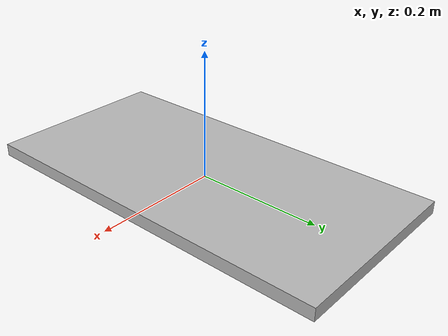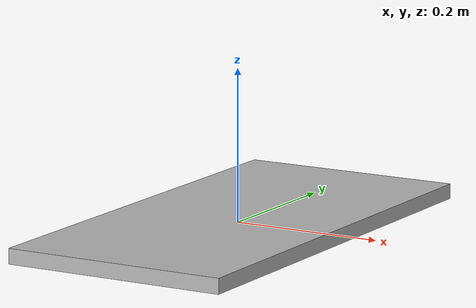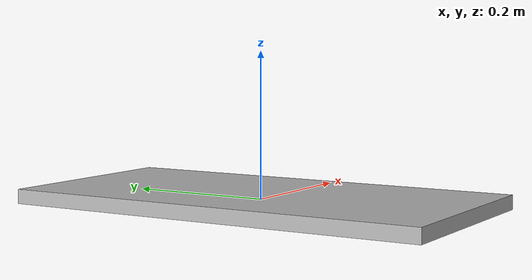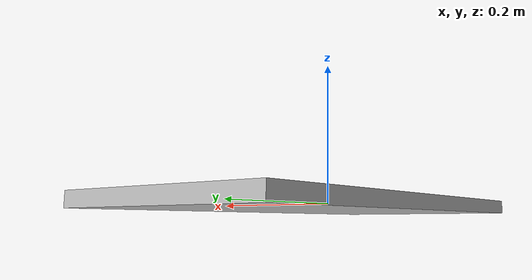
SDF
<?xml version="1.0"?>
<sdf version="1.7">
<model name="plate">
  <link name="plate">
    <inertial>
      <mass>2</mass>
      <!-- Inertia values were calculated to be consistent with the mass and
           geometry size, assuming a uniform density. -->
      <inertia>
        <ixx>0.06</ixx>
        <ixy>0</ixy>
        <ixz>0</ixz>
        <iyy>0.015</iyy>
        <iyz>0</iyz>
        <izz>0.075</izz>
      </inertia>
    </inertial>
    <visual name="plate">
      <geometry>
        <box>
          <size>0.3 0.6 0.02</size>
        </box>
      </geometry>
    </visual>
    <collision name="box">
      <geometry>
        <box>
          <size>0.3 0.6 0.02</size>
        </box>
      </geometry>
      <drake:proximity_properties>
        <drake:rigid_hydroelastic/>
        <drake:mesh_resolution_hint>100</drake:mesh_resolution_hint>
        <!-- Both mu_dynamic and mu_static are used in Continuous system.
          Only mu_dynamic is used in Discrete system.
        -->
        <drake:mu_dynamic>0.4</drake:mu_dynamic>
        <drake:mu_static>0.4</drake:mu_static>
      </drake:proximity_properties>
    </collision>
  </link>
</model>
</sdf>
